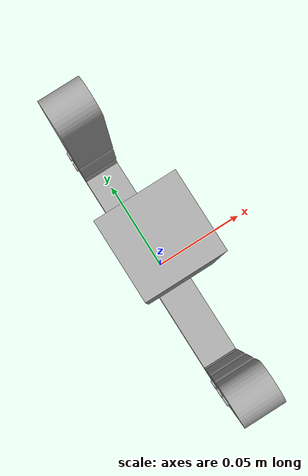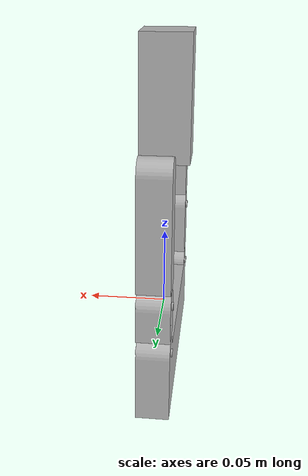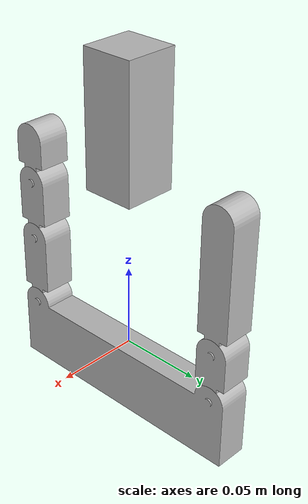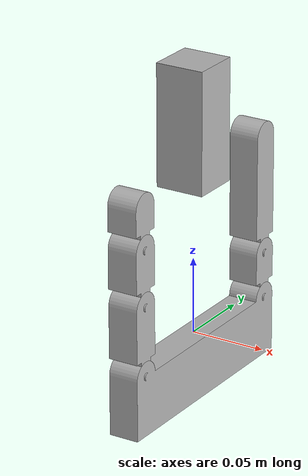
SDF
<?xml version="1.0" ?>
<sdf version='1.6'>
<world name='default'>

<model name='3v2_l.4v.3v.3_r.2v.8_lpinvspringvpinvround_rpinvpinvround'>
<pose>0 0 0 0 0 0</pose>

<link name='world'>
</link>

<link name='body_palm_lpinvrpin'>
<pose>0 0 0 1.57 0 0</pose>
<collision name='body_palm_lpinvrpin_collision'>
<geometry>
<mesh>
<scale>1 1 1</scale>
<uri>objFiles/body_palm_lpinvrpin_collision.obj</uri>
</mesh>
</geometry>
</collision>
<visual name='body_palm_lpinvrpin_visual'>
<geometry>
<mesh>
<scale>1 1 1</scale>
<uri>objFiles/body_palm_lpinvrpin.obj</uri>
</mesh>
</geometry>
</visual>
<gravity>1</gravity>
<self_collide>1</self_collide>
</link>

<joint name='body_palm_lpinvrpin' type='fixed'>
<child>body_palm_lpinvrpin</child>
<parent>world</parent>
<axis>
<xyz>0 0 0</xyz>
<dynamics>
<damping>100</damping>
<friction>100</friction>
<spring_reference>0</spring_reference>
<spring_stiffness>0</spring_stiffness>
</dynamics>
</axis>
</joint>

<link name='body_l_prox_pinvspring'>
<pose>0 -0.07 0 1.57 0 0</pose>
<collision name='body_l_prox_pinvspring_collision'>
<geometry>
<mesh>
<scale>1 1 1</scale>
<uri>objFiles/body_l_prox_pinvspring_collision.obj</uri>
</mesh>
</geometry>
</collision>
<visual name='body_l_prox_pinvspring_visual'>
<geometry>
<mesh>
<scale>1 1 1</scale>
<uri>objFiles/body_l_prox_pinvspring.obj</uri>
</mesh>
</geometry>
</visual>
<gravity>1</gravity>
<self_collide>1</self_collide>
</link>

<joint name='body_l_prox_pinvspring' type='continuous'>
<child>body_l_prox_pinvspring</child>
<parent>body_palm_lpinvrpin</parent>
<axis>
<xyz>1 0 0</xyz>
<dynamics>
<damping>100</damping>
<friction>100</friction>
<spring_reference>0</spring_reference>
<spring_stiffness>0</spring_stiffness>
</dynamics>
</axis>
</joint>

<link name='body_l_int_springvpin'>
<pose>0 -0.07 0.04574999999999999 1.57 0 0</pose>
<collision name='body_l_int_springvpin_collision'>
<geometry>
<mesh>
<scale>1 1 1</scale>
<uri>objFiles/body_l_int_springvpin_collision.obj</uri>
</mesh>
</geometry>
</collision>
<visual name='body_l_int_springvpin_visual'>
<geometry>
<mesh>
<scale>1 1 1</scale>
<uri>objFiles/body_l_int_springvpin.obj</uri>
</mesh>
</geometry>
</visual>
<gravity>1</gravity>
<self_collide>1</self_collide>
</link>

<joint name='body_l_int_springvpin' type='continuous'>
<child>body_l_int_springvpin</child>
<parent>body_l_prox_pinvspring</parent>
<axis>
<xyz>1 0 0</xyz>
<dynamics>
<damping>100</damping>
<friction>100</friction>
<spring_reference>0</spring_reference>
<spring_stiffness>0</spring_stiffness>
</dynamics>
</axis>
</joint>

<link name='body_l_dist_pinvround'>
<pose>0 -0.07 0.08287499999999999 1.57 0 0</pose>
<collision name='body_l_dist_pinvround_collision'>
<geometry>
<mesh>
<scale>1 1 1</scale>
<uri>objFiles/body_l_dist_pinvround_collision.obj</uri>
</mesh>
</geometry>
</collision>
<visual name='body_l_dist_pinvround_visual'>
<geometry>
<mesh>
<scale>1 1 1</scale>
<uri>objFiles/body_l_dist_pinvround.obj</uri>
</mesh>
</geometry>
</visual>
<gravity>1</gravity>
<self_collide>1</self_collide>
</link>

<joint name='body_l_dist_pinvround' type='continuous'>
<child>body_l_dist_pinvround</child>
<parent>body_l_int_springvpin</parent>
<axis>
<xyz>1 0 0</xyz>
<dynamics>
<damping>100</damping>
<friction>100</friction>
<spring_reference>0</spring_reference>
<spring_stiffness>0</spring_stiffness>
</dynamics>
</axis>
</joint>

<link name='body_r_prox_pinvpin'>
<pose>0 0.07 0 1.57 0 0</pose>
<collision name='body_r_prox_pinvpin_collision'>
<geometry>
<mesh>
<scale>1 1 1</scale>
<uri>objFiles/body_r_prox_pinvpin_collision.obj</uri>
</mesh>
</geometry>
</collision>
<visual name='body_r_prox_pinvpin_visual'>
<geometry>
<mesh>
<scale>1 1 1</scale>
<uri>objFiles/body_r_prox_pinvpin.obj</uri>
</mesh>
</geometry>
</visual>
<gravity>1</gravity>
<self_collide>1</self_collide>
</link>

<joint name='body_r_prox_pinvpin' type='continuous'>
<child>body_r_prox_pinvpin</child>
<parent>body_palm_lpinvrpin</parent>
<axis>
<xyz>1 0 0</xyz>
<dynamics>
<damping>100</damping>
<friction>100</friction>
<spring_reference>0</spring_reference>
<spring_stiffness>0</spring_stiffness>
</dynamics>
</axis>
</joint>

<link name='body_r_dist_pinvround'>
<pose>0 0.07 0.030750000000000006 1.57 0 0</pose>
<collision name='body_r_dist_pinvround_collision'>
<geometry>
<mesh>
<scale>1 1 1</scale>
<uri>objFiles/body_r_dist_pinvround_collision.obj</uri>
</mesh>
</geometry>
</collision>
<visual name='body_r_dist_pinvround_visual'>
<geometry>
<mesh>
<scale>1 1 1</scale>
<uri>objFiles/body_r_dist_pinvround.obj</uri>
</mesh>
</geometry>
</visual>
<gravity>1</gravity>
<self_collide>1</self_collide>
</link>

<joint name='body_r_dist_pinvround' type='continuous'>
<child>body_r_dist_pinvround</child>
<parent>body_r_prox_pinvpin</parent>
<axis>
<xyz>1 0 0</xyz>
<dynamics>
<damping>100</damping>
<friction>100</friction>
<spring_reference>0</spring_reference>
<spring_stiffness>0</spring_stiffness>
</dynamics>
</axis>
</joint>

</model>

<model name='Measuring_Block'>
<pose>0 0 0.1 1.57 0 0</pose>

<link name='Measuring_Block'>
<pose>0 0 0 0 0 0</pose>
<collision name='Measuring_Block_collision'>
<geometry>
<mesh>
<scale>1 1 1</scale>
<uri>objFiles/Measuring_Block_collision.obj</uri>
</mesh>
</geometry>
</collision>
<visual name='Measuring_Block_visual'>
<geometry>
<mesh>
<scale>1 1 1</scale>
<uri>objFiles/Measuring_Block.obj</uri>
</mesh>
</geometry>
</visual>
<gravity>1</gravity>
<self_collide>1</self_collide>
</link>

</model>
</world>
</sdf>
